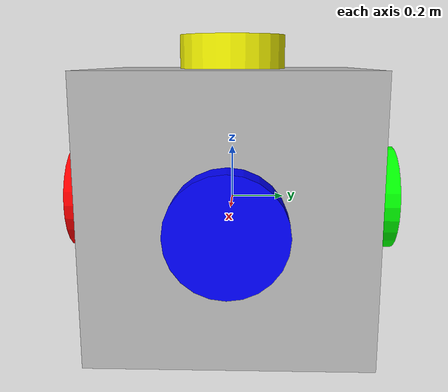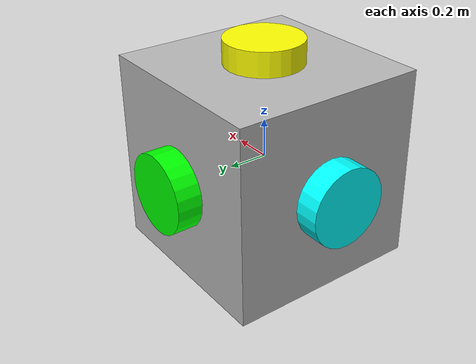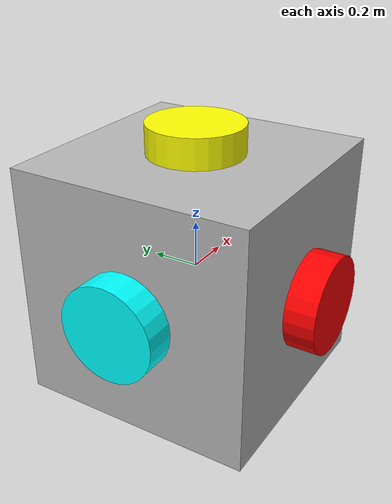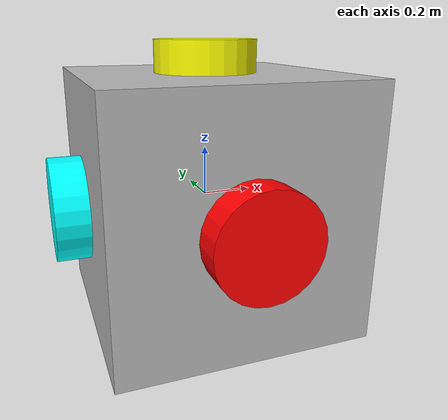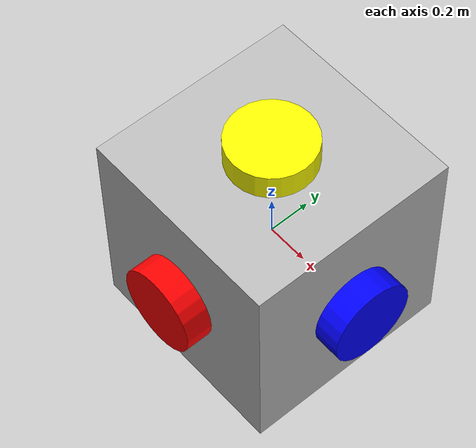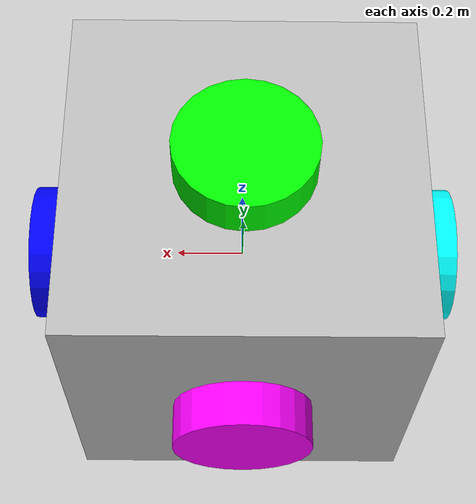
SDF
<?xml version="1.0" encoding="UTF-8"?>
<sdf version='1.9'>
<!--This has six thrusters and no gravity-->
  <model name='base'>
    <link name='base_link'>
      <gravity>false</gravity>
      <inertial>
        <pose>0 0 0 0 0 0</pose>
        <mass>60</mass>
        <inertia>
          <ixx>100</ixx>
          <ixy>0</ixy>
          <ixz>0</ixz>
          <iyy>100</iyy>
          <iyz>0</iyz>
          <izz>100</izz>
        </inertia>
      </inertial>
      <collision name='base_link_collision'>
        <pose>0 0 0 0 0 0</pose>
        <geometry>
          <box>
            <size>1 1 1</size>
          </box>
        </geometry>
        <surface>
          <contact>
            <ode>
              <kp>100000</kp>
              <kd>100000</kd>
            </ode>
          </contact>
          <friction>
            <ode>
              <mu>0</mu>
              <mu2>0</mu2>
              <fdir1>0 0 1</fdir1>
            </ode>
          </friction>
        </surface>
      </collision>
      <visual name='base_link_visual'>
        <pose>0 0 0 0 0 0</pose>
        <geometry>
            <box>
                <size>1 1 1</size>
            </box>
        </geometry>
      </visual>
    </link>

    <!-- 0 : Move Left -->
    <joint name='thruster_0_joint' type='fixed'>
      <pose relative_to='base_link'>0 -0.5 0 -1.5708 0 0</pose>
      <parent>base_link</parent>
      <child>thruster_0</child>
      <axis>
        <dynamics>
          <spring_reference>0</spring_reference>
          <spring_stiffness>0</spring_stiffness>
        </dynamics>
        <xyz>0 0 1</xyz>
        <limit>
          <lower>-1e+16</lower>
          <upper>1e+16</upper>
        </limit>
      </axis>
      <physics>
        <ode>
          <limit>
            <cfm>0</cfm>
            <erp>0.2</erp>
          </limit>
        </ode>
      </physics>
    </joint>
    <link name='thruster_0'>
      <gravity>false</gravity>
      <pose relative_to='thruster_0_joint'>0 0 0 0 -0 0</pose>
      <inertial>
        <pose>0 0 0 0 0 0</pose>
        <mass>0.001</mass>
        <inertia>
          <ixx>1e-05</ixx>
          <ixy>0</ixy>
          <ixz>0</ixz>
          <iyy>1e-05</iyy>
          <iyz>0</iyz>
          <izz>1e-05</izz>
        </inertia>
      </inertial>
      <visual name="thruster_0_visual">
        <pose> 0 0 0 0 0 0 </pose>
        <geometry>
            <cylinder>
                <length>0.25</length>
                <radius>0.2</radius>
            </cylinder>
        </geometry>
        <material>
            <ambient>0.1 0.1 0.1 1</ambient>
            <diffuse>1 0 0 1</diffuse>
            <specular>0 0 0 0</specular>
            <emissive>0 0 0 1</emissive>
        </material>
      </visual>
    </link>
    <plugin filename="gz-sim-spacecraft-thruster-model-system" name="gz::sim::systems::SpacecraftThrusterModel">
      <link_name>thruster_0</link_name>
      <actuator_number>0</actuator_number>
      <duty_cycle_frequency>10</duty_cycle_frequency>
      <max_thrust>1.4</max_thrust>
      <sub_topic>command/duty_cycle</sub_topic>
    </plugin>

    <!--1: Move Right -->
    <joint name='thruster_1_joint' type='fixed'>
      <pose relative_to='base_link'>0 0.5 0 1.5708 0 0</pose>
      <parent>base_link</parent>
      <child>thruster_1</child>
      <axis>
        <dynamics>
          <spring_reference>0</spring_reference>
          <spring_stiffness>0</spring_stiffness>
        </dynamics>
        <xyz>0 0 1</xyz>
        <limit>
          <lower>-1e+16</lower>
          <upper>1e+16</upper>
        </limit>
      </axis>
      <physics>
        <ode>
          <limit>
            <cfm>0</cfm>
            <erp>0.2</erp>
          </limit>
        </ode>
      </physics>
    </joint>
    <link name='thruster_1'>
      <gravity>false</gravity>
      <pose relative_to='thruster_1_joint'>0 0 0 0 -0 0</pose>
      <inertial>
        <pose>0 0 0 0 0 0</pose>
        <mass>0.001</mass>
        <inertia>
          <ixx>1e-05</ixx>
          <ixy>0</ixy>
          <ixz>0</ixz>
          <iyy>1e-05</iyy>
          <iyz>0</iyz>
          <izz>1e-05</izz>
        </inertia>
      </inertial>
      <visual name="thruster_1_visual">
        <pose> 0 0 0 0 0 0 </pose>
        <geometry>
            <cylinder>
                <length>0.25</length>
                <radius>0.2</radius>
            </cylinder>
        </geometry>
        <material>
            <ambient>0.1 0.1 0.1 1</ambient>
            <diffuse>0 1 0 1</diffuse>
            <specular>0 0 0 0</specular>
            <emissive>0 0 0 1</emissive>
        </material>
      </visual>
    </link>
    <plugin filename="gz-sim-spacecraft-thruster-model-system" name="gz::sim::systems::SpacecraftThrusterModel">
      <link_name>thruster_1</link_name>
      <actuator_number>1</actuator_number>
      <duty_cycle_frequency>10</duty_cycle_frequency>
      <max_thrust>1.4</max_thrust>
      <sub_topic>command/duty_cycle</sub_topic>
    </plugin>

    <!--2: Move Forward -->
    <joint name='thruster_2_joint' type='fixed'>
      <pose relative_to='base_link'>0.5 0 0 0 -1.5708 0</pose>
      <parent>base_link</parent>
      <child>thruster_2</child>
      <axis>
        <dynamics>
          <spring_reference>0</spring_reference>
          <spring_stiffness>0</spring_stiffness>
        </dynamics>
        <xyz>0 0 1</xyz>
        <limit>
          <lower>-1e+16</lower>
          <upper>1e+16</upper>
        </limit>
      </axis>
      <physics>
        <ode>
          <limit>
            <cfm>0</cfm>
            <erp>0.2</erp>
          </limit>
        </ode>
      </physics>
    </joint>
    <link name='thruster_2'>
      <gravity>false</gravity>
      <pose relative_to='thruster_2_joint'>0 0 0 0 -0 0</pose>
      <inertial>
        <pose>0 0 0 0 0 0</pose>
        <mass>0.001</mass>
        <inertia>
          <ixx>1e-05</ixx>
          <ixy>0</ixy>
          <ixz>0</ixz>
          <iyy>1e-05</iyy>
          <iyz>0</iyz>
          <izz>1e-05</izz>
        </inertia>
      </inertial>
      <visual name="thruster_2_visual">
        <pose> 0 0 0 0 0 0 </pose>
        <geometry>
            <cylinder>
                <length>0.25</length>
                <radius>0.2</radius>
            </cylinder>
        </geometry>
        <material>
            <ambient>0.1 0.1 0.1 1</ambient>
            <diffuse>0 0 1 1</diffuse>
            <specular>0 0 0 0</specular>
            <emissive>0 0 0 1</emissive>
        </material>
      </visual>
    </link>
    <plugin filename="gz-sim-spacecraft-thruster-model-system" name="gz::sim::systems::SpacecraftThrusterModel">
      <link_name>thruster_2</link_name>
      <actuator_number>2</actuator_number>
      <duty_cycle_frequency>10</duty_cycle_frequency>
      <max_thrust>1.4</max_thrust>
      <sub_topic>command/duty_cycle</sub_topic>
    </plugin>

    <!--3. Move Backward-->
    <joint name='thruster_3_joint' type='fixed'>
      <pose relative_to='base_link'>-0.5 0 0 0 1.5708 0</pose>
      <parent>base_link</parent>
      <child>thruster_3</child>
      <axis>
        <dynamics>
          <spring_reference>0</spring_reference>
          <spring_stiffness>0</spring_stiffness>
        </dynamics>
        <xyz>0 0 1</xyz>
        <limit>
          <lower>-1e+16</lower>
          <upper>1e+16</upper>
        </limit>
      </axis>
      <physics>
        <ode>
          <limit>
            <cfm>0</cfm>
            <erp>0.2</erp>
          </limit>
        </ode>
      </physics>
    </joint>
    <link name='thruster_3'>
      <gravity>false</gravity>
      <pose relative_to='thruster_3_joint'>0 0 0 0 -0 0</pose>
      <inertial>
        <pose>0 0 0 0 0 0</pose>
        <mass>0.001</mass>
        <inertia>
          <ixx>1e-05</ixx>
          <ixy>0</ixy>
          <ixz>0</ixz>
          <iyy>1e-05</iyy>
          <iyz>0</iyz>
          <izz>1e-05</izz>
        </inertia>
      </inertial>
      <visual name="thruster_3_visual">
        <pose> 0 0 0 0 0 0 </pose>
        <geometry>
            <cylinder>
                <length>0.25</length>
                <radius>0.2</radius>
            </cylinder>
        </geometry>
        <material>
            <ambient>0.1 0.1 0.1 1</ambient>
            <diffuse>0 1 1 1</diffuse>
            <specular>0 0 0 0</specular>
            <emissive>0 0 0 1</emissive>
        </material>
      </visual>
    </link>
    <plugin filename="gz-sim-spacecraft-thruster-model-system" name="gz::sim::systems::SpacecraftThrusterModel">
      <link_name>thruster_3</link_name>
      <actuator_number>3</actuator_number>
      <duty_cycle_frequency>10</duty_cycle_frequency>
      <max_thrust>1.4</max_thrust>
      <sub_topic>command/duty_cycle</sub_topic>
    </plugin>

    <!--4. Move Up-->
    <joint name='thruster_4_joint' type='fixed'>
      <pose relative_to='base_link'>0 0 -0.5 0 0 1.5708 </pose>
      <parent>base_link</parent>
      <child>thruster_4</child>
      <axis>
        <dynamics>
          <spring_reference>0</spring_reference>
          <spring_stiffness>0</spring_stiffness>
        </dynamics>
        <xyz>0 0 1</xyz>
        <limit>
          <lower>-1e+16</lower>
          <upper>1e+16</upper>
        </limit>
      </axis>
      <physics>
        <ode>
          <limit>
            <cfm>0</cfm>
            <erp>0.2</erp>
          </limit>
        </ode>
      </physics>
    </joint>
    <link name='thruster_4'>
      <gravity>false</gravity>
      <pose relative_to='thruster_4_joint'>0 0 0 0 -0 0</pose>
      <inertial>
        <pose>0 0 0 0 0 0</pose>
        <mass>0.001</mass>
        <inertia>
          <ixx>1e-05</ixx>
          <ixy>0</ixy>
          <ixz>0</ixz>
          <iyy>1e-05</iyy>
          <iyz>0</iyz>
          <izz>1e-05</izz>
        </inertia>
      </inertial>
      <visual name="thruster_4_visual">
        <pose> 0 0 0 0 0 0 </pose>
        <geometry>
            <cylinder>
                <length>0.25</length>
                <radius>0.2</radius>
            </cylinder>
        </geometry>
        <material>
            <ambient>0.1 0.1 0.1 1</ambient>
            <diffuse>1 0 1 1</diffuse>
            <specular>0 0 0 0</specular>
            <emissive>0 0 0 1</emissive>
        </material>
      </visual>
    </link>
    <plugin filename="gz-sim-spacecraft-thruster-model-system" name="gz::sim::systems::SpacecraftThrusterModel">
      <link_name>thruster_4</link_name>
      <actuator_number>4</actuator_number>
      <duty_cycle_frequency>10</duty_cycle_frequency>
      <max_thrust>1.4</max_thrust>
      <sub_topic>command/duty_cycle</sub_topic>
    </plugin>

    <!--5. Move Down-->
    <joint name='thruster_5_joint' type='fixed'>
      <pose relative_to='base_link'>0 0 0.5 0 0 -1.5708 </pose>
      <parent>base_link</parent>
      <child>thruster_5</child>
      <axis>
        <dynamics>
          <spring_reference>0</spring_reference>
          <spring_stiffness>0</spring_stiffness>
        </dynamics>
        <xyz>0 0 1</xyz>
        <limit>
          <lower>-1e+16</lower>
          <upper>1e+16</upper>
        </limit>
      </axis>
      <physics>
        <ode>
          <limit>
            <cfm>0</cfm>
            <erp>0.2</erp>
          </limit>
        </ode>
      </physics>
    </joint>
    <link name='thruster_5'>
      <gravity>false</gravity>
      <pose relative_to='thruster_5_joint'>0 0 0 0 0 0</pose>
      <inertial>
        <pose>0 0 0 0 0 0</pose>
        <mass>0.001</mass>
        <inertia>
          <ixx>1e-05</ixx>
          <ixy>0</ixy>
          <ixz>0</ixz>
          <iyy>1e-05</iyy>
          <iyz>0</iyz>
          <izz>1e-05</izz>
        </inertia>
      </inertial>
      <visual name="thruster_5_visual">
        <pose> 0 0 0 0 0 0 </pose>
        <geometry>
            <cylinder>
                <length>0.25</length>
                <radius>0.2</radius>
            </cylinder>
        </geometry>
        <material>
            <ambient>0.1 0.1 0.1 1</ambient>
            <diffuse>1 1 0 1</diffuse>
            <specular>0 0 0 0</specular>
            <emissive>0 0 0 1</emissive>
        </material>
      </visual>
    </link>
    <plugin filename="gz-sim-spacecraft-thruster-model-system" name="gz::sim::systems::SpacecraftThrusterModel">
      <link_name>thruster_5</link_name>
      <actuator_number>5</actuator_number>
      <duty_cycle_frequency>10</duty_cycle_frequency>
      <max_thrust>1.4</max_thrust>
      <sub_topic>command/duty_cycle</sub_topic>
    </plugin>
</model>
</sdf>
